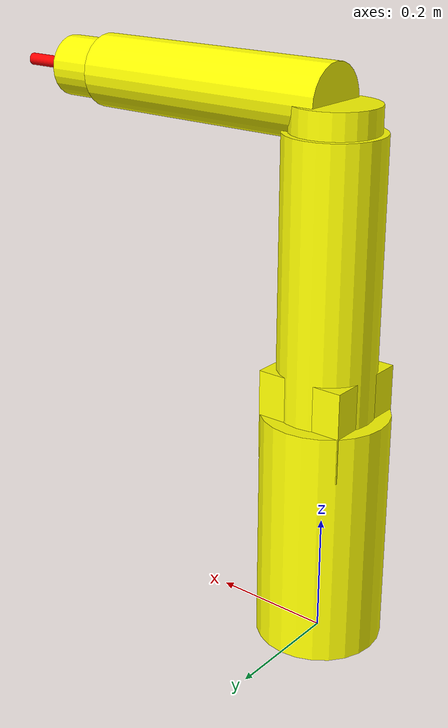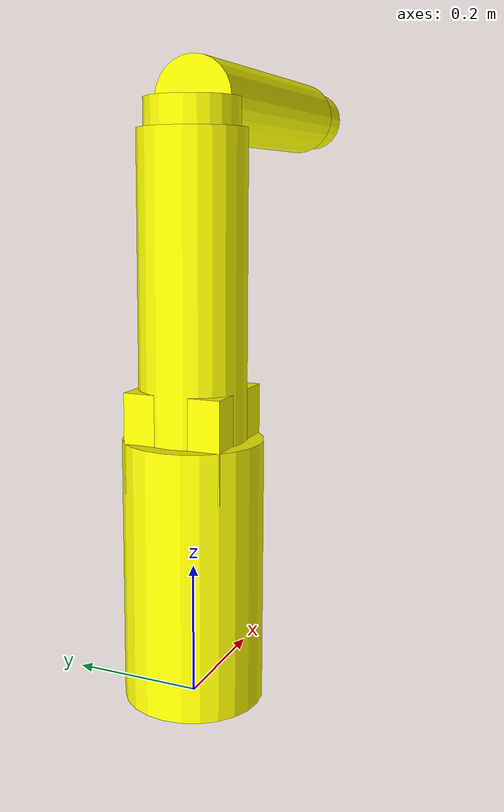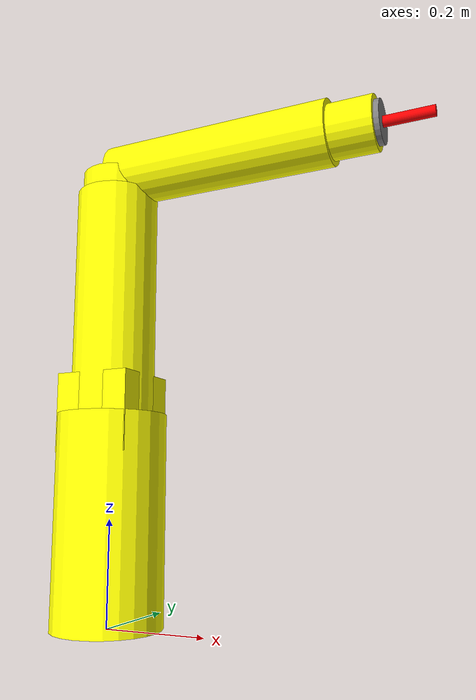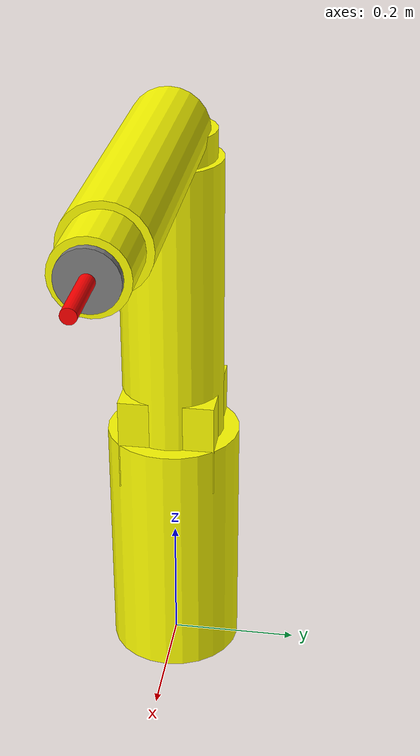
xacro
<?xml version="1.0" ?>
<robot name="my_abb_irb1200" xmlns:xacro="http://ros.org/wiki/xacro">

    <!-- Properties -->
    <xacro:property name="M_PI" value="3.1415926535897931" />
    <xacro:property name="prefix" value="" />

    <!-- Inertial calculation macros -->
    <xacro:macro name="cylinder_inertia" params="m r h">
        <inertia ixx="${m*(3*r*r+h*h)/12}" ixy="0" ixz="0" iyy="${m*(3*r*r+h*h)/12}" iyz="0" izz="${m*r*r/2}" />
    </xacro:macro>
    <xacro:macro name="box_inertia" params="m x y z">
        <inertia ixx="${m*(y*y+z*z)/12}" ixy="0" ixz="0" iyy="${m*(x*x+z*z)/12}" iyz="0" izz="${m*(x*x+y*y)/12}" />
    </xacro:macro>

    <!-- World Link -->
    <link name="world" />

    <!-- Base Link -->
    <joint name="world_joint" type="fixed">
        <parent link="world" />
        <child link="${prefix}base_link" />
        <origin xyz="0 0 0" rpy="0 0 0" />
    </joint>

    <link name="${prefix}base_link">
        <visual>
            <origin rpy="0 0 0" xyz="0 0 0.19955"/>
            <geometry><cylinder length="0.3991" radius="0.105"/></geometry>
            <material name="yellow"/>
        </visual>
        <collision>
            <origin rpy="0 0 0" xyz="0 0 0.19955"/>
            <geometry><cylinder length="0.3991" radius="0.105"/></geometry>
        </collision>
        <inertial>
            <mass value="5.0"/>
            <origin rpy="0 0 0" xyz="0 0 0.19955"/>
            <xacro:cylinder_inertia m="5.0" r="0.105" h="0.3991" />
        </inertial>
    </link>

    <!-- Link 1 -->
    <joint type="revolute" name="${prefix}joint_1">
      <origin xyz="0 0 0.3991" rpy="0 0 0"/>
      <axis xyz="0 0 1"/>
      <parent link="${prefix}base_link"/>
      <child link="${prefix}link_1"/>
      <limit effort="1000" lower="-2.967" upper="2.967" velocity="5.027"/>
    </joint>
    <link name="${prefix}link_1">
        <visual>
            <origin rpy="0 0 0" xyz="0 0 0"/>
            <geometry><box size="0.15 0.15 0.15"/></geometry>
            <material name="yellow"/>
        </visual>
        <collision>
            <origin rpy="0 0 0" xyz="0 0 0"/>
            <geometry><box size="0.15 0.15 0.15"/></geometry>
        </collision>
        <inertial>
            <mass value="2.0"/>
            <origin rpy="0 0 0" xyz="0 0 0"/>
            <xacro:box_inertia m="2.0" x="0.15" y="0.15" z="0.15" />
        </inertial>
    </link>

    <!-- Link 2 -->
    <joint type="revolute" name="${prefix}joint_2">
      <origin xyz="0 0 0" rpy="0 0 0"/>
      <axis xyz="0 1 0"/>
      <parent link="${prefix}link_1"/>
      <child link="${prefix}link_2"/>
      <limit effort="1000" lower="-1.745" upper="2.269" velocity="4.189"/>
    </joint>
    <link name="${prefix}link_2">
        <visual>
            <origin rpy="0 0 0" xyz="0 0 0.224"/>
            <geometry><cylinder length="0.448" radius="0.08"/></geometry>
            <material name="yellow"/>
        </visual>
        <collision>
            <origin rpy="0 0 0" xyz="0 0 0.224"/>
            <geometry><cylinder length="0.448" radius="0.08"/></geometry>
        </collision>
        <inertial>
            <mass value="4.0"/>
            <origin rpy="0 0 0" xyz="0 0 0.224"/>
            <xacro:cylinder_inertia m="4.0" r="0.08" h="0.448" />
        </inertial>
    </link>

    <!-- Link 3 -->
    <joint type="revolute" name="${prefix}joint_3">
      <origin xyz="0 0 0.448" rpy="0 0 0"/>
      <axis xyz="0 1 0"/>
      <parent link="${prefix}link_2"/>
      <child link="${prefix}link_3"/>
      <limit effort="1000" lower="-3.491" upper="1.222" velocity="5.236"/>
    </joint>
    <link name="${prefix}link_3">
        <visual>
            <origin rpy="0 0 0" xyz="0 0 0.021"/>
            <geometry><cylinder length="0.042" radius="0.07"/></geometry>
            <material name="yellow"/>
        </visual>
        <collision>
            <origin rpy="0 0 0" xyz="0 0 0.021"/>
            <geometry><cylinder length="0.042" radius="0.07"/></geometry>
        </collision>
        <inertial>
            <mass value="1.0"/>
            <origin rpy="0 0 0" xyz="0 0 0.021"/>
            <xacro:cylinder_inertia m="1.0" r="0.07" h="0.042" />
        </inertial>
    </link>

    <!-- Link 4 -->
    <joint type="revolute" name="${prefix}joint_4">
      <origin xyz="0 0 0.042" rpy="0 0 0"/>
      <axis xyz="1 0 0"/>
      <parent link="${prefix}link_3"/>
      <child link="${prefix}link_4"/>
      <limit effort="1000" lower="-4.712" upper="4.712" velocity="6.981"/>
    </joint>
    <link name="${prefix}link_4">
        <visual>
            <origin rpy="0 1.570796 0" xyz="0.2255 0 0"/>
            <geometry><cylinder length="0.451" radius="0.06"/></geometry>
            <material name="yellow"/>
        </visual>
        <collision>
            <origin rpy="0 1.570796 0" xyz="0.2255 0 0"/>
            <geometry><cylinder length="0.451" radius="0.06"/></geometry>
        </collision>
        <inertial>
            <mass value="3.0"/>
            <origin rpy="0 1.570796 0" xyz="0.2255 0 0"/>
            <xacro:cylinder_inertia m="3.0" r="0.06" h="0.451" />
        </inertial>
    </link>

    <!-- Link 5 -->
    <joint type="revolute" name="${prefix}joint_5">
      <origin xyz="0.451 0 0" rpy="0 0 0"/>
      <axis xyz="0 1 0"/>
      <parent link="${prefix}link_4"/>
      <child link="${prefix}link_5"/>
      <limit effort="1000" lower="-2.269" upper="2.269" velocity="7.069"/>
    </joint>
    <link name="${prefix}link_5">
        <visual>
            <origin rpy="0 1.570796 0" xyz="0.041 0 0"/>
            <geometry><cylinder length="0.082" radius="0.05"/></geometry>
            <material name="yellow"/>
        </visual>
        <collision>
            <origin rpy="0 1.570796 0" xyz="0.041 0 0"/>
            <geometry><cylinder length="0.082" radius="0.05"/></geometry>
        </collision>
        <inertial>
            <mass value="0.5"/>
            <origin rpy="0 1.570796 0" xyz="0.041 0 0"/>
            <xacro:cylinder_inertia m="0.5" r="0.05" h="0.082" />
        </inertial>
    </link>

    <!-- Link 6 -->
    <joint type="revolute" name="${prefix}joint_6">
      <origin xyz="0.082 0 0" rpy="0 0 0"/>
      <axis xyz="1 0 0"/>
      <parent link="${prefix}link_5"/>
      <child link="${prefix}link_6"/>
      <limit effort="1000" lower="-6.283" upper="6.283" velocity="10.472"/>
    </joint>
    <link name="${prefix}link_6">
        <visual>
            <origin rpy="0 1.570796 0" xyz="0 0 0"/>
            <geometry><cylinder length="0.02" radius="0.04"/></geometry>
            <material name="grey"/>
        </visual>
        <collision>
            <origin rpy="0 1.570796 0" xyz="0 0 0"/>
            <geometry><cylinder length="0.02" radius="0.04"/></geometry>
        </collision>
        <inertial>
            <mass value="0.2"/>
            <origin rpy="0 1.570796 0" xyz="0 0 0"/>
            <xacro:cylinder_inertia m="0.2" r="0.04" h="0.02" />
        </inertial>
    </link>

    <!-- Tool0 -->
    <joint name="${prefix}joint_6-tool0" type="fixed">
      <parent link="${prefix}link_6" />
      <child link = "${prefix}tool0" />
      <origin xyz="0.0 0.0 0.0" rpy="0.0 0.0 0.0" />
    </joint>
    <link name="${prefix}tool0"/>

    <!-- Materials -->
    <material name="yellow">
      <color rgba="1 1 0 1"/>
    </material>
    <material name="grey">
      <color rgba="0.5 0.5 0.5 1"/>
    </material>

    <!-- ros2_control -->
    <ros2_control name="GazeboSystem" type="system">
        <hardware>
            <plugin>gazebo_ros2_control/GazeboSystem</plugin>
        </hardware>
        <joint name="joint_1">
            <command_interface name="position">
                <param name="min">-2.967</param>
                <param name="max">2.967</param>
            </command_interface>
            <state_interface name="position"/>
            <state_interface name="velocity"/>
        </joint>
        <joint name="joint_2">
            <command_interface name="position">
                <param name="min">-1.745</param>
                <param name="max">2.269</param>
            </command_interface>
            <state_interface name="position"/>
            <state_interface name="velocity"/>
        </joint>
        <joint name="joint_3">
            <command_interface name="position">
                <param name="min">-3.491</param>
                <param name="max">1.222</param>
            </command_interface>
            <state_interface name="position"/>
            <state_interface name="velocity"/>
        </joint>
        <joint name="joint_4">
            <command_interface name="position">
                <param name="min">-4.712</param>
                <param name="max">4.712</param>
            </command_interface>
            <state_interface name="position"/>
            <state_interface name="velocity"/>
        </joint>
        <joint name="joint_5">
            <command_interface name="position">
                <param name="min">-2.269</param>
                <param name="max">2.269</param>
            </command_interface>
            <state_interface name="position"/>
            <state_interface name="velocity"/>
        </joint>
        <joint name="joint_6">
            <command_interface name="position">
                <param name="min">-6.283</param>
                <param name="max">6.283</param>
            </command_interface>
            <state_interface name="position"/>
            <state_interface name="velocity"/>
        </joint>
    </ros2_control>

    <!-- Gazebo plugin -->
    <gazebo>
        <plugin filename="libgazebo_ros2_control.so" name="gazebo_ros2_control">
            <robot_param>robot_description</robot_param>
            <robot_param_node>robot_state_publisher</robot_param_node>
            <parameters>$(find my_abb_robot)/config/controllers.yaml</parameters>
        </plugin>
    </gazebo>
  <!-- 简易末端工具 (Simple Gripper Tool) - 添加在文件末尾 -->

  <!-- 定义工具的 Link (一个简单的红色圆柱体) -->
  <link name="simple_tool">
    <visual>
      <origin xyz="0 0 0.05" rpy="0 0 0"/> <!-- 工具长度的一半 -->
      <geometry>
        <cylinder radius="0.01" length="0.1"/> <!-- 半径1cm，长10cm的棍子 -->
      </geometry>
      <material name="red">
        <color rgba="1 0 0 1"/>
      </material>
    </visual>
    <collision>
      <origin xyz="0 0 0.05" rpy="0 0 0"/>
      <geometry>
        <cylinder radius="0.01" length="0.1"/>
      </geometry>
    </collision>
    <inertial>
      <mass value="0.1"/>
      <inertia ixx="0.0001" ixy="0" ixz="0" iyy="0.0001" iyz="0" izz="0.0001"/>
    </inertial>
  </link>

  <!-- 定义关节，将工具固定在 link_6 上 -->
  <joint name="joint_tool" type="fixed">
    <parent link="link_6"/>
    <child link="simple_tool"/>
    <origin xyz="0 0 0" rpy="0 1.5708 0"/> <!-- 旋转90度，让它指向前方 -->
  </joint>

</robot>
